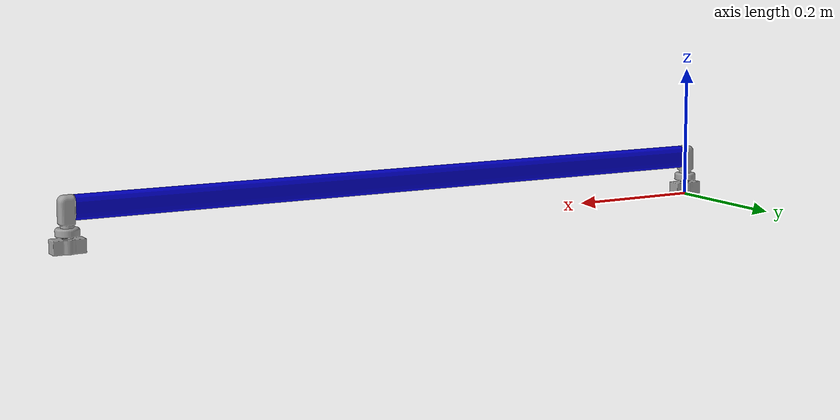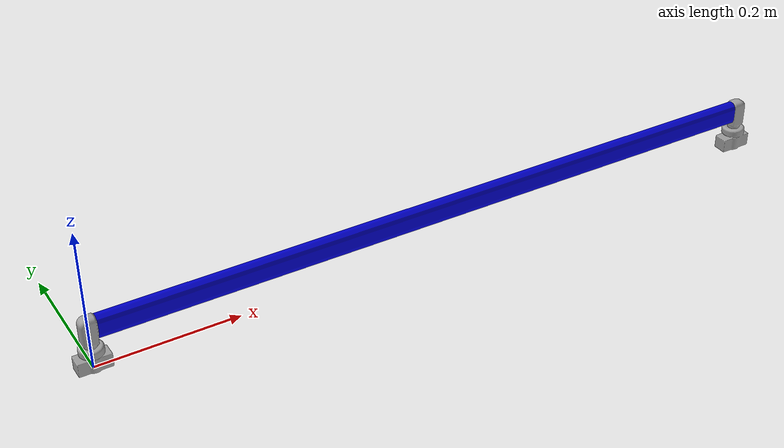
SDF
<?xml version="1.0" ?>
<sdf version='1.4'>
  <model name='handrail_41_5_model'>
    <static>true</static>
    <link name='handrail_41_5_link'>
      <pose>0 0 0 0 -0 0</pose>
      <inertial>
        <pose>0 0 0 0 0 0</pose>
        <mass>0.36</mass>
        <inertia>
          <ixx>1</ixx>
          <ixy>0</ixy>
          <ixz>0</ixz>
          <iyy>1</iyy>
          <iyz>0</iyz>
          <izz>1</izz>
        </inertia>
      </inertial>
      <collision name='handrail_41_5_collision'>
        <pose>0 0 0 0 0 0</pose>
        <geometry>
          <mesh>
            <scale>1 1 1</scale>
            <uri>model://handrail_41_5//meshes//handrail_41_5.dae</uri>
          </mesh>
        </geometry>
        <surface>
          <contact>
            <ode/>
          </contact>
          <friction>
            <ode/>
          </friction>
        </surface>
      </collision>
      <visual name='handrail_41_5_visual'>
        <pose>0 0 0 0 0 0</pose>
        <geometry>
          <mesh>
            <scale>1 1 1</scale>
            <uri>model://handrail_41_5//meshes//handrail_41_5.dae</uri>
          </mesh>
        </geometry>
      </visual>
    </link>
  </model>
</sdf>
